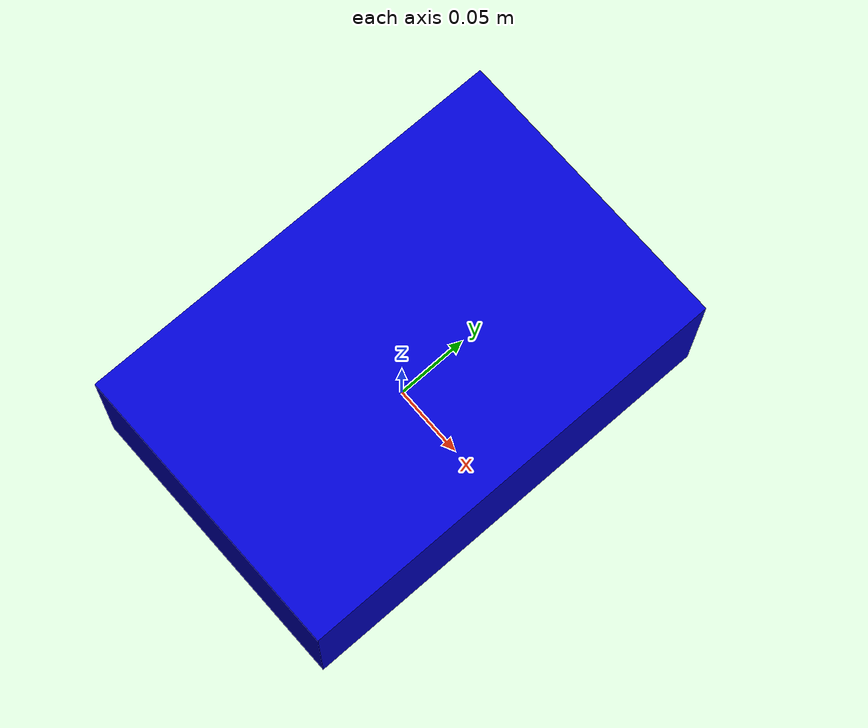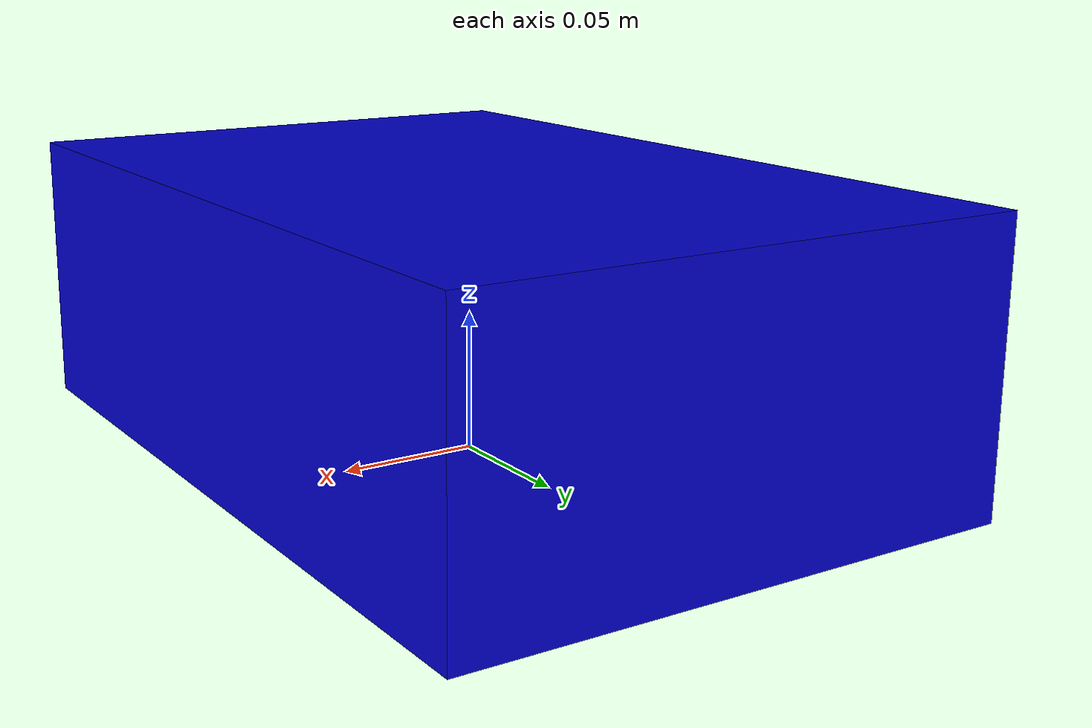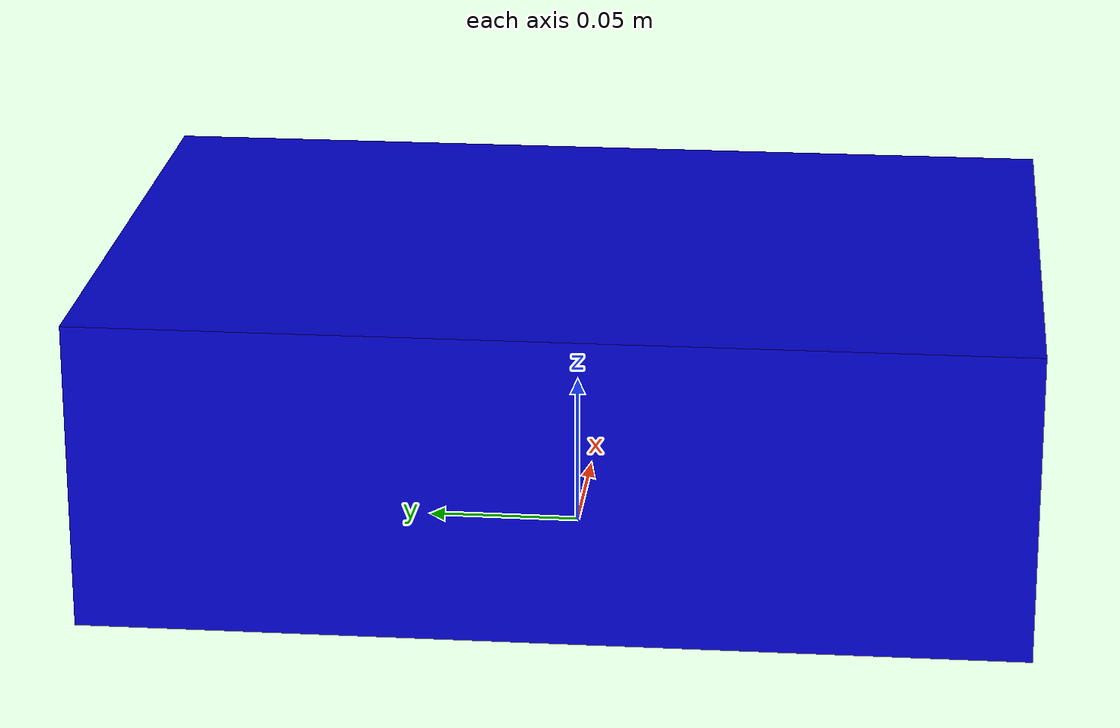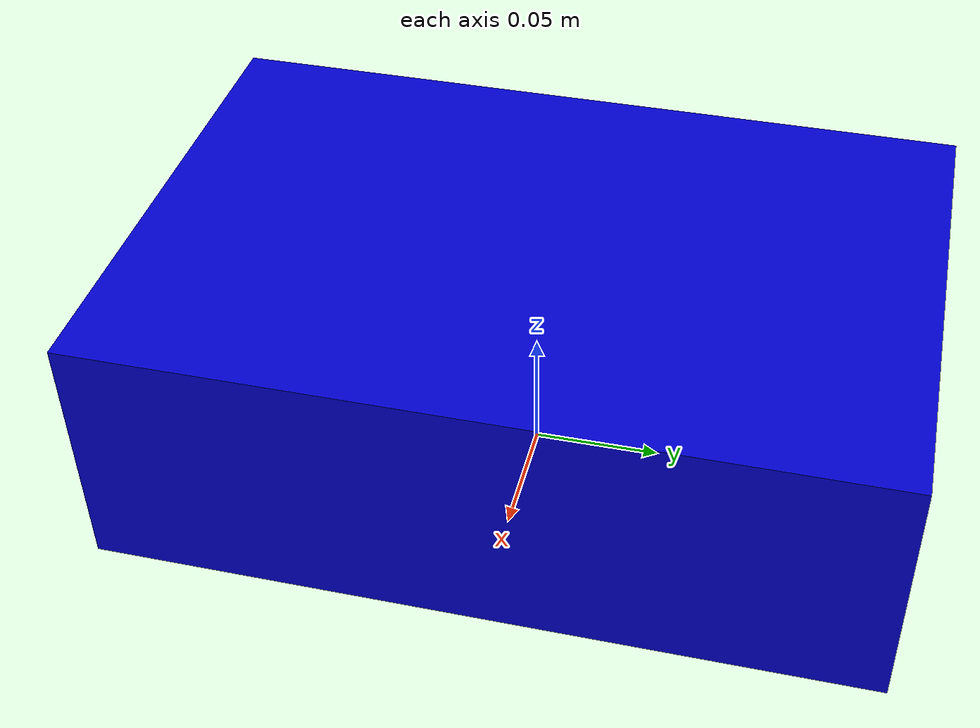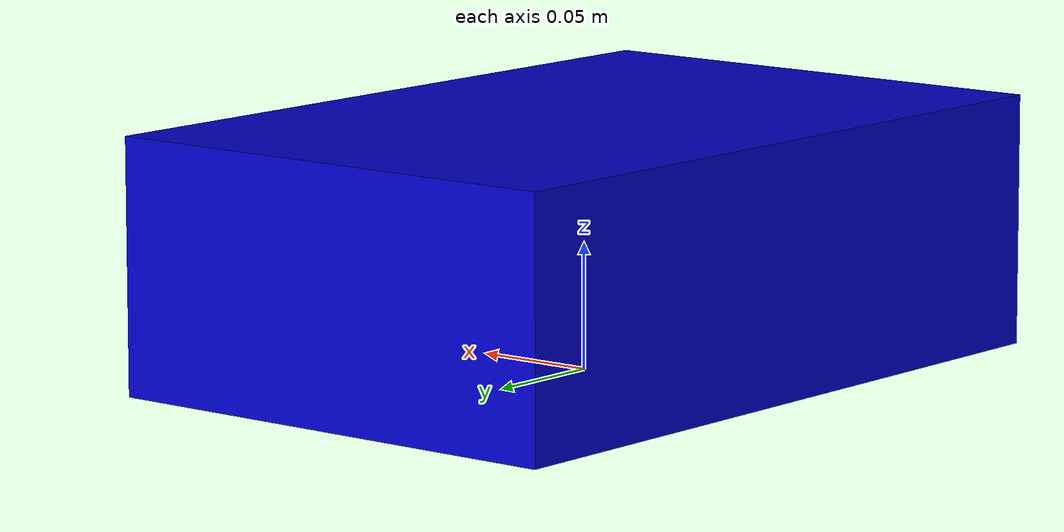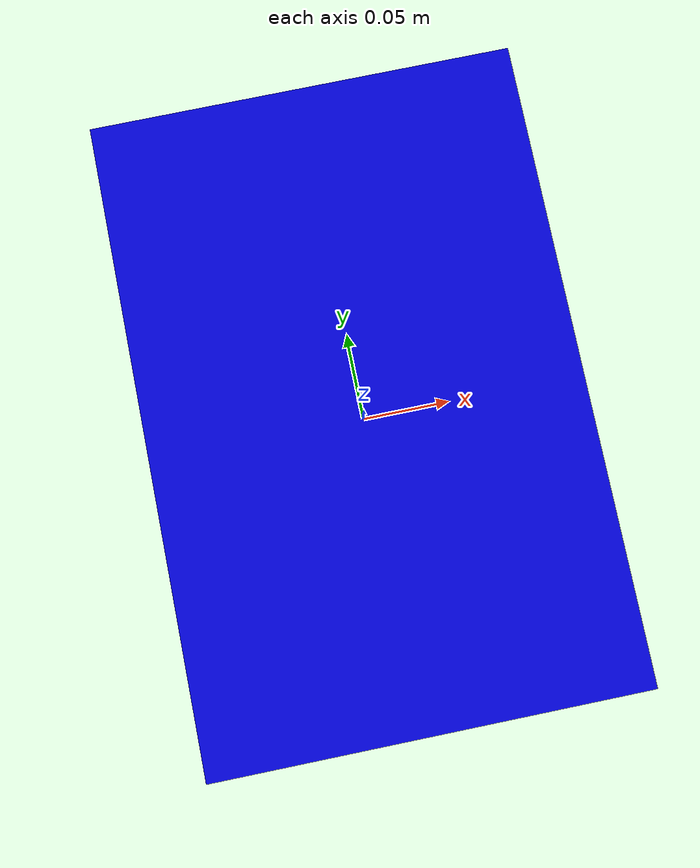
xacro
<?xml version="1.0"?>
<robot xmlns:xacro="http://www.ros.org/wiki/xacro" name="robot">

  <!-- Define constants -->
  <xacro:property name="PI" value="3.1415926535897931"/>

  <!-- Include ros2_control macro -->
  <xacro:include filename="$(find robot_control_py)/urdf/robot_control.xacro" />

  <!-- Base Link -->
  <link name="base_link">
    <visual>
      <geometry>
        <box size="0.2 0.3 0.1"/>
      </geometry>
      <origin xyz="0 0 0.05" rpy="0 0 0"/>
      <material name="blue">
        <color rgba="0 0 0.8 1"/>
      </material>
    </visual>
    <collision>
      <geometry>
        <box size="0.2 0.3 0.1"/>
      </geometry>
      <origin xyz="0 0 0.05" rpy="0 0 0"/>
    </collision>
    <inertial>
      <mass value="1.0"/>
      <inertia ixx="0.01" ixy="0.0" ixz="0.0" iyy="0.01" iyz="0.0" izz="0.01"/>
      <origin xyz="0 0 0.05" rpy="0 0 0"/>
    </inertial>
  </link>

  <!-- Left Wheel Link -->
  <link name="left_wheel">
    <visual>
      <geometry>
        <cylinder radius="0.033" length="0.02"/>
      </geometry>
      <origin xyz="0 0 0" rpy="${PI/2} 0 0"/>
      <material name="black">
        <color rgba="0.1 0.1 0.1 1"/>
      </material>
    </visual>
    <collision>
      <geometry>
        <cylinder radius="0.033" length="0.02"/>
      </geometry>
      <origin xyz="0 0 0" rpy="${PI/2} 0 0"/>
    </collision>
    <inertial>
      <mass value="0.1"/>
      <inertia ixx="0.00005" ixy="0.0" ixz="0.0" iyy="0.00005" iyz="0.0" izz="0.00005"/>
      <origin xyz="0 0 0" rpy="${PI/2} 0 0"/>
    </inertial>
  </link>

  <!-- Right Wheel Link -->
  <link name="right_wheel">
    <visual>
      <geometry>
        <cylinder radius="0.033" length="0.02"/>
      </geometry>
      <origin xyz="0 0 0" rpy="${PI/2} 0 0"/>
      <material name="black">
        <color rgba="0.1 0.1 0.1 1"/>
      </material>
    </visual>
    <collision>
      <geometry>
        <cylinder radius="0.033" length="0.02"/>
      </geometry>
      <origin xyz="0 0 0" rpy="${PI/2} 0 0"/>
    </collision>
    <inertial>
      <mass value="0.1"/>
      <inertia ixx="0.00005" ixy="0.0" ixz="0.0" iyy="0.00005" iyz="0.0" izz="0.00005"/>
      <origin xyz="0 0 0" rpy="${PI/2} 0 0"/>
    </inertial>
  </link>

  <!-- Caster Wheel Link -->
  <link name="caster_wheel">
    <visual>
      <geometry>
        <sphere radius="0.015"/>
      </geometry>
      <material name="grey">
        <color rgba="0.5 0.5 0.5 1"/>
      </material>
    </visual>
    <collision>
      <geometry>
        <sphere radius="0.015"/>
      </geometry>
    </collision>
    <inertial>
      <mass value="0.05"/>
      <inertia ixx="0.00001" ixy="0.0" ixz="0.0" iyy="0.00001" iyz="0.0" izz="0.00001"/>
    </inertial>
  </link>

  <!-- Left Wheel Joint -->
  <joint name="left_wheel_joint" type="continuous">
    <parent link="base_link"/>
    <child link="left_wheel"/>
    <origin xyz="0 0.085 0.033" rpy="0 0 0"/>
    <axis xyz="0 1 0"/>
  </joint>

  <!-- Right Wheel Joint -->
  <joint name="right_wheel_joint" type="continuous">
    <parent link="base_link"/>
    <child link="right_wheel"/>
    <origin xyz="0 -0.085 0.033" rpy="0 0 0"/>
    <axis xyz="0 1 0"/>
  </joint>

  <!-- Caster Joint -->
  <joint name="caster_joint" type="fixed">
    <parent link="base_link"/>
    <child link="caster_wheel"/>
    <origin xyz="0.07 0 0.015" rpy="0 0 0"/>
  </joint>

  <!-- Include the ros2_control description -->
  <xacro:robot_control name="tb6612fng_hardware"/>

</robot>
